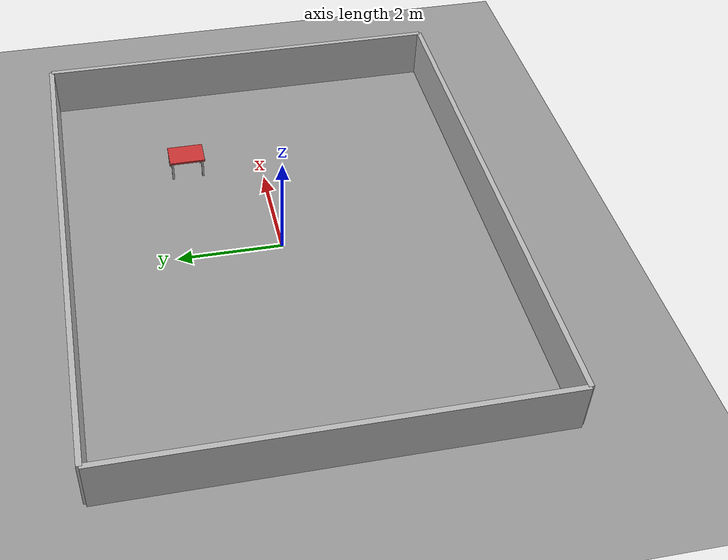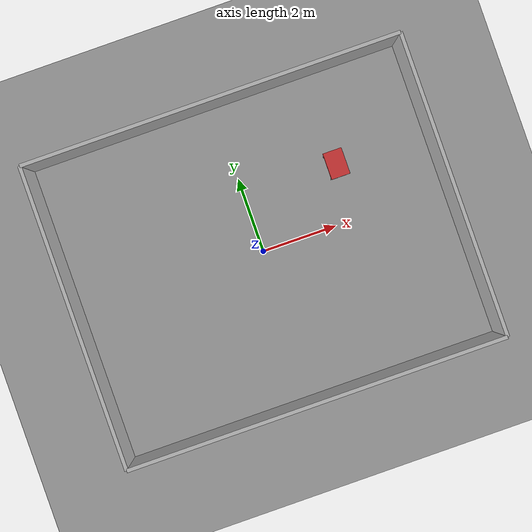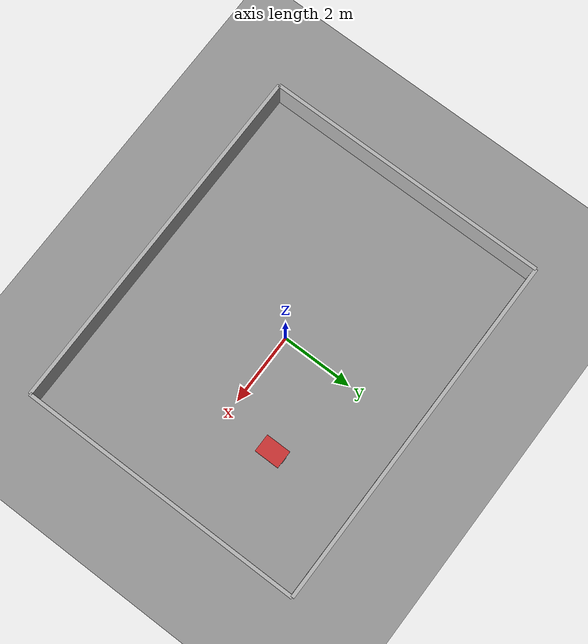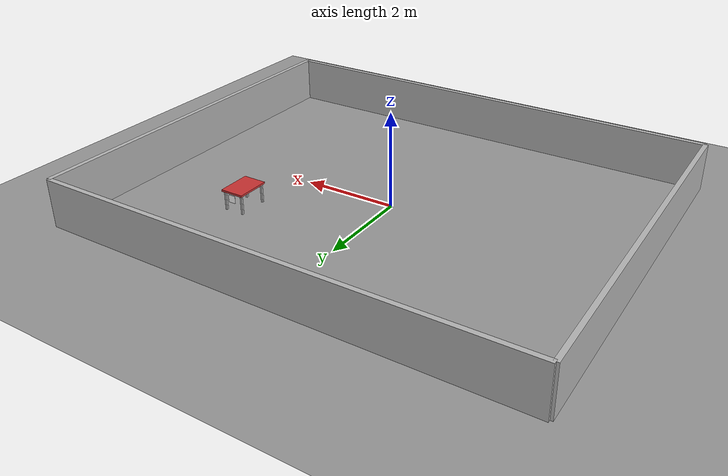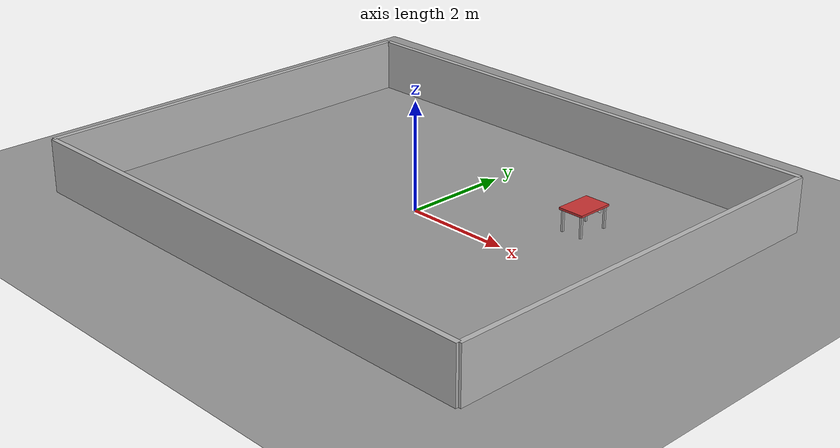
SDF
<?xml version="1.0" ?>
<sdf version="1.10">
  <world name="factory">

    <physics name="1ms" type="ignored">
      <max_step_size>0.001</max_step_size>
      <real_time_factor>1.0</real_time_factor>
    </physics>

    <plugin filename="gz-sim-physics-system" name="gz::sim::systems::Physics"/>
    <plugin filename="gz-sim-user-commands-system" name="gz::sim::systems::UserCommands"/>
    <plugin filename="gz-sim-scene-broadcaster-system" name="gz::sim::systems::SceneBroadcaster"/>
    <plugin filename="gz-sim-sensors-system" name="gz::sim::systems::Sensors">
      <render_engine>ogre2</render_engine>
    </plugin>

    <light type="directional" name="sun">
      <cast_shadows>true</cast_shadows>
      <pose>0 0 10 0 0 0</pose>
      <diffuse>0.9 0.9 0.9 1</diffuse>
      <specular>0.3 0.3 0.3 1</specular>
      <direction>-0.4 0.3 -0.9</direction>
    </light>

    <model name="ground_plane">
      <static>true</static>
      <link name="link">
        <collision name="collision">
          <geometry><plane><normal>0 0 1</normal><size>40 40</size></plane></geometry>
        </collision>
        <visual name="visual">
          <geometry><plane><normal>0 0 1</normal><size>40 40</size></plane></geometry>
          <material>
            <ambient>0.5 0.5 0.5 1</ambient>
            <diffuse>0.6 0.6 0.6 1</diffuse>
          </material>
        </visual>
      </link>
    </model>

    <!-- Simple factory room: four perimeter walls (10 m x 8 m). -->
    <model name="walls">
      <static>true</static>
      <link name="link">
        <pose>0 0 0.5 0 0 0</pose>
        <collision name="north">
          <pose>0 4 0 0 0 0</pose>
          <geometry><box><size>10 0.1 1</size></box></geometry>
        </collision>
        <visual name="north_v">
          <pose>0 4 0 0 0 0</pose>
          <geometry><box><size>10 0.1 1</size></box></geometry>
        </visual>
        <collision name="south">
          <pose>0 -4 0 0 0 0</pose>
          <geometry><box><size>10 0.1 1</size></box></geometry>
        </collision>
        <visual name="south_v">
          <pose>0 -4 0 0 0 0</pose>
          <geometry><box><size>10 0.1 1</size></box></geometry>
        </visual>
        <collision name="east">
          <pose>5 0 0 0 0 0</pose>
          <geometry><box><size>0.1 8 1</size></box></geometry>
        </collision>
        <visual name="east_v">
          <pose>5 0 0 0 0 0</pose>
          <geometry><box><size>0.1 8 1</size></box></geometry>
        </visual>
        <collision name="west">
          <pose>-5 0 0 0 0 0</pose>
          <geometry><box><size>0.1 8 1</size></box></geometry>
        </collision>
        <visual name="west_v">
          <pose>-5 0 0 0 0 0</pose>
          <geometry><box><size>0.1 8 1</size></box></geometry>
        </visual>
      </link>
    </model>

    <!-- A trolley to dock under (Phase 5). Replace the box with a model that
         carries an AprilTag once docking work starts. -->
    <include>
      <uri>model://trolley</uri>
      <name>trolley_1</name>
      <pose>2.5 1.5 0 0 0 1.5708</pose>
    </include>

  </world>
</sdf>

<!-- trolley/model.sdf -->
<sdf version="1.10">
  <model name="trolley">
    <!-- Static for now; becomes liftable once the lift/dock work begins (Phase 5). -->
    <static>true</static>

    <link name="frame">
      <!-- Raised platform (top), ~0.40 m clearance underneath for drive-under. -->
      <visual name="platform_v">
        <pose>0 0 0.42 0 0 0</pose>
        <geometry><box><size>0.7 0.5 0.04</size></box></geometry>
        <material><ambient>0.8 0.2 0.2 1</ambient><diffuse>0.8 0.2 0.2 1</diffuse></material>
      </visual>
      <collision name="platform_c">
        <pose>0 0 0.42 0 0 0</pose>
        <geometry><box><size>0.7 0.5 0.04</size></box></geometry>
      </collision>

      <!-- Four legs -->
      <visual name="leg_fl_v">
        <pose>0.3 0.2 0.21 0 0 0</pose>
        <geometry><box><size>0.04 0.04 0.42</size></box></geometry>
      </visual>
      <collision name="leg_fl_c">
        <pose>0.3 0.2 0.21 0 0 0</pose>
        <geometry><box><size>0.04 0.04 0.42</size></box></geometry>
      </collision>
      <visual name="leg_fr_v">
        <pose>0.3 -0.2 0.21 0 0 0</pose>
        <geometry><box><size>0.04 0.04 0.42</size></box></geometry>
      </visual>
      <collision name="leg_fr_c">
        <pose>0.3 -0.2 0.21 0 0 0</pose>
        <geometry><box><size>0.04 0.04 0.42</size></box></geometry>
      </collision>
      <visual name="leg_bl_v">
        <pose>-0.3 0.2 0.21 0 0 0</pose>
        <geometry><box><size>0.04 0.04 0.42</size></box></geometry>
      </visual>
      <collision name="leg_bl_c">
        <pose>-0.3 0.2 0.21 0 0 0</pose>
        <geometry><box><size>0.04 0.04 0.42</size></box></geometry>
      </collision>
      <visual name="leg_br_v">
        <pose>-0.3 -0.2 0.21 0 0 0</pose>
        <geometry><box><size>0.04 0.04 0.42</size></box></geometry>
      </visual>
      <collision name="leg_br_c">
        <pose>-0.3 -0.2 0.21 0 0 0</pose>
        <geometry><box><size>0.04 0.04 0.42</size></box></geometry>
      </collision>

      <!-- Front face plate where an AprilTag will be mounted for docking. -->
      <visual name="tag_plate_v">
        <pose>0.351 0 0.30 0 1.5708 0</pose>
        <geometry><box><size>0.16 0.16 0.002</size></box></geometry>
        <material><ambient>1 1 1 1</ambient><diffuse>1 1 1 1</diffuse></material>
      </visual>
    </link>
  </model>
</sdf>
